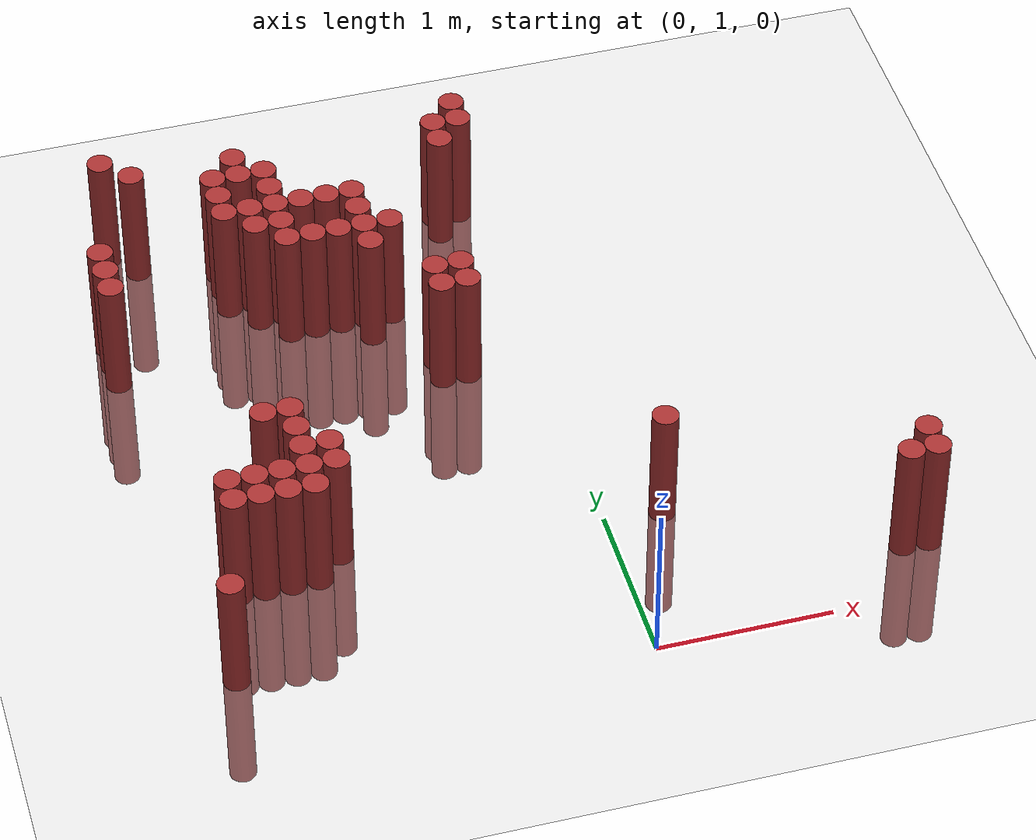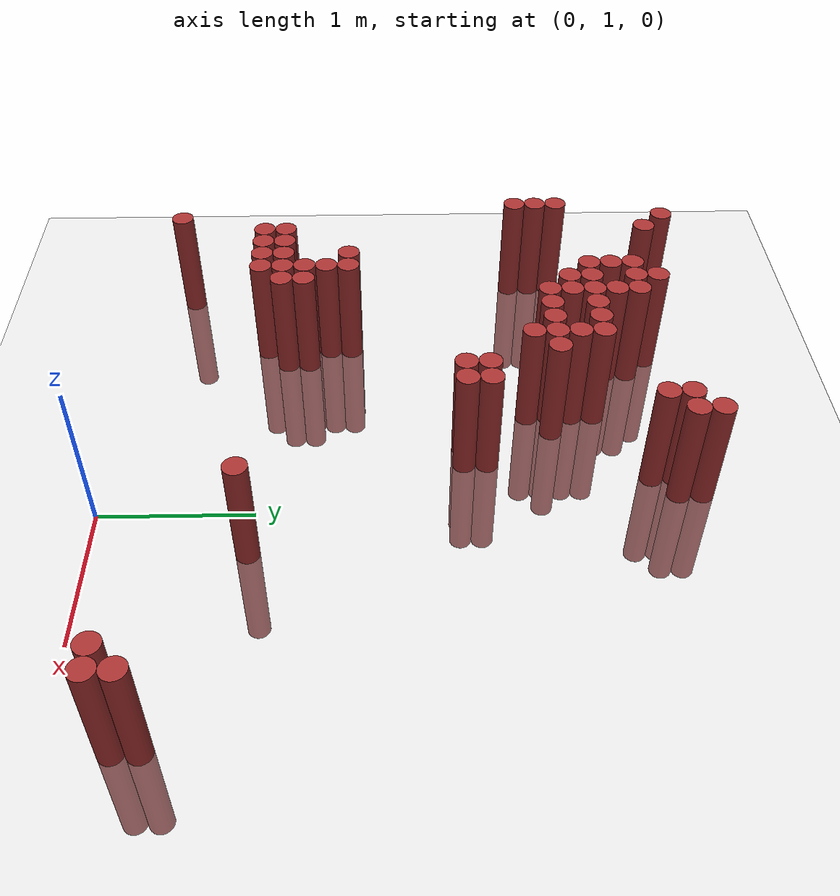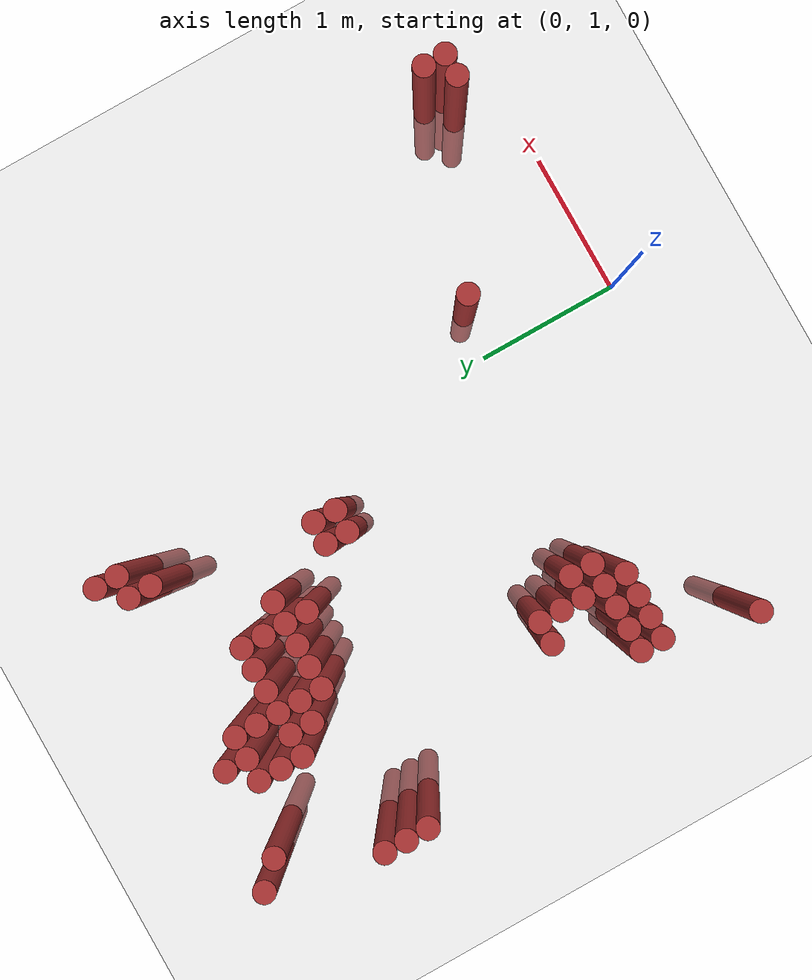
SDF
<sdf version="1.6">
 <world name="default">
  <model name="ground_plane">
   <static>1</static>
   <link name="link">
    <collision name="collision">
     <geometry><plane><normal>0 0 1</normal><size>100 100</size></plane></geometry>
     <surface><friction><ode><mu>100</mu><mu2>50</mu2></ode></friction></surface>
    </collision>
    <visual name="visual">
     <cast_shadows>0</cast_shadows>
     <geometry><plane><normal>0 0 1</normal><size>100 100</size></plane></geometry>
     <material>
      <script><uri>file://media/materials/scripts/gazebo.material</uri><name>Gazebo/Grey</name></script>
     </material>
    </visual>
   </link>
  </model>
  <model name="unit_cylinder_331">
   <static>1</static>
   <pose>-2.375000 3.775000 0.000000 0.000000 0.000000 0.000000</pose>
   <link name="link">
    <inertial>
     <mass>1</mass>
     <inertia><ixx>0.145833</ixx><ixy>0</ixy><ixz>0</ixz><iyy>0.145833</iyy><iyz>0</iyz><izz>0.125</izz></inertia>
    </inertial>
    <collision name="collision">
     <geometry><cylinder><radius>0.075000</radius><length>1.5</length></cylinder></geometry>
    </collision>
    <visual name="visual">
     <geometry><cylinder><radius>0.075000</radius><length>1.5</length></cylinder></geometry>
     <material>
      <ambient>0.648000 0.192000 0.192000 1</ambient>
      <diffuse>0.648000 0.192000 0.192000 1</diffuse>
     </material>
     <material>
      <script><name>Gazebo/Grey</name><uri>file://media/materials/scripts/gazebo.material</uri></script>
     </material>
    </visual>
   </link>
  </model>
  <model name="unit_cylinder_332">
   <static>1</static>
   <pose>-2.375000 3.925000 0.000000 0.000000 0.000000 0.000000</pose>
   <link name="link">
    <inertial>
     <mass>1</mass>
     <inertia><ixx>0.145833</ixx><ixy>0</ixy><ixz>0</ixz><iyy>0.145833</iyy><iyz>0</iyz><izz>0.125</izz></inertia>
    </inertial>
    <collision name="collision">
     <geometry><cylinder><radius>0.075000</radius><length>1.5</length></cylinder></geometry>
    </collision>
    <visual name="visual">
     <geometry><cylinder><radius>0.075000</radius><length>1.5</length></cylinder></geometry>
     <material>
      <ambient>0.648000 0.192000 0.192000 1</ambient>
      <diffuse>0.648000 0.192000 0.192000 1</diffuse>
     </material>
     <material>
      <script><name>Gazebo/Grey</name><uri>file://media/materials/scripts/gazebo.material</uri></script>
     </material>
    </visual>
   </link>
  </model>
  <model name="unit_cylinder_333">
   <static>1</static>
   <pose>-2.375000 4.075000 0.000000 0.000000 0.000000 0.000000</pose>
   <link name="link">
    <inertial>
     <mass>1</mass>
     <inertia><ixx>0.145833</ixx><ixy>0</ixy><ixz>0</ixz><iyy>0.145833</iyy><iyz>0</iyz><izz>0.125</izz></inertia>
    </inertial>
    <collision name="collision">
     <geometry><cylinder><radius>0.075000</radius><length>1.5</length></cylinder></geometry>
    </collision>
    <visual name="visual">
     <geometry><cylinder><radius>0.075000</radius><length>1.5</length></cylinder></geometry>
     <material>
      <ambient>0.648000 0.192000 0.192000 1</ambient>
      <diffuse>0.648000 0.192000 0.192000 1</diffuse>
     </material>
     <material>
      <script><name>Gazebo/Grey</name><uri>file://media/materials/scripts/gazebo.material</uri></script>
     </material>
    </visual>
   </link>
  </model>
  <model name="unit_cylinder_335">
   <static>1</static>
   <pose>-2.225000 1.375000 0.000000 0.000000 0.000000 0.000000</pose>
   <link name="link">
    <inertial>
     <mass>1</mass>
     <inertia><ixx>0.145833</ixx><ixy>0</ixy><ixz>0</ixz><iyy>0.145833</iyy><iyz>0</iyz><izz>0.125</izz></inertia>
    </inertial>
    <collision name="collision">
     <geometry><cylinder><radius>0.075000</radius><length>1.5</length></cylinder></geometry>
    </collision>
    <visual name="visual">
     <geometry><cylinder><radius>0.075000</radius><length>1.5</length></cylinder></geometry>
     <material>
      <ambient>0.648000 0.192000 0.192000 1</ambient>
      <diffuse>0.648000 0.192000 0.192000 1</diffuse>
     </material>
     <material>
      <script><name>Gazebo/Grey</name><uri>file://media/materials/scripts/gazebo.material</uri></script>
     </material>
    </visual>
   </link>
  </model>
  <model name="unit_cylinder_336">
   <static>1</static>
   <pose>-2.225000 4.825000 0.000000 0.000000 0.000000 0.000000</pose>
   <link name="link">
    <inertial>
     <mass>1</mass>
     <inertia><ixx>0.145833</ixx><ixy>0</ixy><ixz>0</ixz><iyy>0.145833</iyy><iyz>0</iyz><izz>0.125</izz></inertia>
    </inertial>
    <collision name="collision">
     <geometry><cylinder><radius>0.075000</radius><length>1.5</length></cylinder></geometry>
    </collision>
    <visual name="visual">
     <geometry><cylinder><radius>0.075000</radius><length>1.5</length></cylinder></geometry>
     <material>
      <ambient>0.648000 0.192000 0.192000 1</ambient>
      <diffuse>0.648000 0.192000 0.192000 1</diffuse>
     </material>
     <material>
      <script><name>Gazebo/Grey</name><uri>file://media/materials/scripts/gazebo.material</uri></script>
     </material>
    </visual>
   </link>
  </model>
  <model name="unit_cylinder_337">
   <static>1</static>
   <pose>-2.075000 1.975000 0.000000 0.000000 0.000000 0.000000</pose>
   <link name="link">
    <inertial>
     <mass>1</mass>
     <inertia><ixx>0.145833</ixx><ixy>0</ixy><ixz>0</ixz><iyy>0.145833</iyy><iyz>0</iyz><izz>0.125</izz></inertia>
    </inertial>
    <collision name="collision">
     <geometry><cylinder><radius>0.075000</radius><length>1.5</length></cylinder></geometry>
    </collision>
    <visual name="visual">
     <geometry><cylinder><radius>0.075000</radius><length>1.5</length></cylinder></geometry>
     <material>
      <ambient>0.648000 0.192000 0.192000 1</ambient>
      <diffuse>0.648000 0.192000 0.192000 1</diffuse>
     </material>
     <material>
      <script><name>Gazebo/Grey</name><uri>file://media/materials/scripts/gazebo.material</uri></script>
     </material>
    </visual>
   </link>
  </model>
  <model name="unit_cylinder_338">
   <static>1</static>
   <pose>-2.075000 2.125000 0.000000 0.000000 0.000000 0.000000</pose>
   <link name="link">
    <inertial>
     <mass>1</mass>
     <inertia><ixx>0.145833</ixx><ixy>0</ixy><ixz>0</ixz><iyy>0.145833</iyy><iyz>0</iyz><izz>0.125</izz></inertia>
    </inertial>
    <collision name="collision">
     <geometry><cylinder><radius>0.075000</radius><length>1.5</length></cylinder></geometry>
    </collision>
    <visual name="visual">
     <geometry><cylinder><radius>0.075000</radius><length>1.5</length></cylinder></geometry>
     <material>
      <ambient>0.648000 0.192000 0.192000 1</ambient>
      <diffuse>0.648000 0.192000 0.192000 1</diffuse>
     </material>
     <material>
      <script><name>Gazebo/Grey</name><uri>file://media/materials/scripts/gazebo.material</uri></script>
     </material>
    </visual>
   </link>
  </model>
  <model name="unit_cylinder_339">
   <static>1</static>
   <pose>-2.075000 4.675000 0.000000 0.000000 0.000000 0.000000</pose>
   <link name="link">
    <inertial>
     <mass>1</mass>
     <inertia><ixx>0.145833</ixx><ixy>0</ixy><ixz>0</ixz><iyy>0.145833</iyy><iyz>0</iyz><izz>0.125</izz></inertia>
    </inertial>
    <collision name="collision">
     <geometry><cylinder><radius>0.075000</radius><length>1.5</length></cylinder></geometry>
    </collision>
    <visual name="visual">
     <geometry><cylinder><radius>0.075000</radius><length>1.5</length></cylinder></geometry>
     <material>
      <ambient>0.648000 0.192000 0.192000 1</ambient>
      <diffuse>0.648000 0.192000 0.192000 1</diffuse>
     </material>
     <material>
      <script><name>Gazebo/Grey</name><uri>file://media/materials/scripts/gazebo.material</uri></script>
     </material>
    </visual>
   </link>
  </model>
  <model name="unit_cylinder_340">
   <static>1</static>
   <pose>-1.925000 1.975000 0.000000 0.000000 0.000000 0.000000</pose>
   <link name="link">
    <inertial>
     <mass>1</mass>
     <inertia><ixx>0.145833</ixx><ixy>0</ixy><ixz>0</ixz><iyy>0.145833</iyy><iyz>0</iyz><izz>0.125</izz></inertia>
    </inertial>
    <collision name="collision">
     <geometry><cylinder><radius>0.075000</radius><length>1.5</length></cylinder></geometry>
    </collision>
    <visual name="visual">
     <geometry><cylinder><radius>0.075000</radius><length>1.5</length></cylinder></geometry>
     <material>
      <ambient>0.648000 0.192000 0.192000 1</ambient>
      <diffuse>0.648000 0.192000 0.192000 1</diffuse>
     </material>
     <material>
      <script><name>Gazebo/Grey</name><uri>file://media/materials/scripts/gazebo.material</uri></script>
     </material>
    </visual>
   </link>
  </model>
  <model name="unit_cylinder_341">
   <static>1</static>
   <pose>-1.925000 2.125000 0.000000 0.000000 0.000000 0.000000</pose>
   <link name="link">
    <inertial>
     <mass>1</mass>
     <inertia><ixx>0.145833</ixx><ixy>0</ixy><ixz>0</ixz><iyy>0.145833</iyy><iyz>0</iyz><izz>0.125</izz></inertia>
    </inertial>
    <collision name="collision">
     <geometry><cylinder><radius>0.075000</radius><length>1.5</length></cylinder></geometry>
    </collision>
    <visual name="visual">
     <geometry><cylinder><radius>0.075000</radius><length>1.5</length></cylinder></geometry>
     <material>
      <ambient>0.648000 0.192000 0.192000 1</ambient>
      <diffuse>0.648000 0.192000 0.192000 1</diffuse>
     </material>
     <material>
      <script><name>Gazebo/Grey</name><uri>file://media/materials/scripts/gazebo.material</uri></script>
     </material>
    </visual>
   </link>
  </model>
  <model name="unit_cylinder_342">
   <static>1</static>
   <pose>-1.775000 1.975000 0.000000 0.000000 0.000000 0.000000</pose>
   <link name="link">
    <inertial>
     <mass>1</mass>
     <inertia><ixx>0.145833</ixx><ixy>0</ixy><ixz>0</ixz><iyy>0.145833</iyy><iyz>0</iyz><izz>0.125</izz></inertia>
    </inertial>
    <collision name="collision">
     <geometry><cylinder><radius>0.075000</radius><length>1.5</length></cylinder></geometry>
    </collision>
    <visual name="visual">
     <geometry><cylinder><radius>0.075000</radius><length>1.5</length></cylinder></geometry>
     <material>
      <ambient>0.648000 0.192000 0.192000 1</ambient>
      <diffuse>0.648000 0.192000 0.192000 1</diffuse>
     </material>
     <material>
      <script><name>Gazebo/Grey</name><uri>file://media/materials/scripts/gazebo.material</uri></script>
     </material>
    </visual>
   </link>
  </model>
  <model name="unit_cylinder_343">
   <static>1</static>
   <pose>-1.775000 2.125000 0.000000 0.000000 0.000000 0.000000</pose>
   <link name="link">
    <inertial>
     <mass>1</mass>
     <inertia><ixx>0.145833</ixx><ixy>0</ixy><ixz>0</ixz><iyy>0.145833</iyy><iyz>0</iyz><izz>0.125</izz></inertia>
    </inertial>
    <collision name="collision">
     <geometry><cylinder><radius>0.075000</radius><length>1.5</length></cylinder></geometry>
    </collision>
    <visual name="visual">
     <geometry><cylinder><radius>0.075000</radius><length>1.5</length></cylinder></geometry>
     <material>
      <ambient>0.648000 0.192000 0.192000 1</ambient>
      <diffuse>0.648000 0.192000 0.192000 1</diffuse>
     </material>
     <material>
      <script><name>Gazebo/Grey</name><uri>file://media/materials/scripts/gazebo.material</uri></script>
     </material>
    </visual>
   </link>
  </model>
  <model name="unit_cylinder_344">
   <static>1</static>
   <pose>-1.775000 2.575000 0.000000 0.000000 0.000000 0.000000</pose>
   <link name="link">
    <inertial>
     <mass>1</mass>
     <inertia><ixx>0.145833</ixx><ixy>0</ixy><ixz>0</ixz><iyy>0.145833</iyy><iyz>0</iyz><izz>0.125</izz></inertia>
    </inertial>
    <collision name="collision">
     <geometry><cylinder><radius>0.075000</radius><length>1.5</length></cylinder></geometry>
    </collision>
    <visual name="visual">
     <geometry><cylinder><radius>0.075000</radius><length>1.5</length></cylinder></geometry>
     <material>
      <ambient>0.648000 0.192000 0.192000 1</ambient>
      <diffuse>0.648000 0.192000 0.192000 1</diffuse>
     </material>
     <material>
      <script><name>Gazebo/Grey</name><uri>file://media/materials/scripts/gazebo.material</uri></script>
     </material>
    </visual>
   </link>
  </model>
  <model name="unit_cylinder_345">
   <static>1</static>
   <pose>-1.625000 1.975000 0.000000 0.000000 0.000000 0.000000</pose>
   <link name="link">
    <inertial>
     <mass>1</mass>
     <inertia><ixx>0.145833</ixx><ixy>0</ixy><ixz>0</ixz><iyy>0.145833</iyy><iyz>0</iyz><izz>0.125</izz></inertia>
    </inertial>
    <collision name="collision">
     <geometry><cylinder><radius>0.075000</radius><length>1.5</length></cylinder></geometry>
    </collision>
    <visual name="visual">
     <geometry><cylinder><radius>0.075000</radius><length>1.5</length></cylinder></geometry>
     <material>
      <ambient>0.648000 0.192000 0.192000 1</ambient>
      <diffuse>0.648000 0.192000 0.192000 1</diffuse>
     </material>
     <material>
      <script><name>Gazebo/Grey</name><uri>file://media/materials/scripts/gazebo.material</uri></script>
     </material>
    </visual>
   </link>
  </model>
  <model name="unit_cylinder_346">
   <static>1</static>
   <pose>-1.625000 2.125000 0.000000 0.000000 0.000000 0.000000</pose>
   <link name="link">
    <inertial>
     <mass>1</mass>
     <inertia><ixx>0.145833</ixx><ixy>0</ixy><ixz>0</ixz><iyy>0.145833</iyy><iyz>0</iyz><izz>0.125</izz></inertia>
    </inertial>
    <collision name="collision">
     <geometry><cylinder><radius>0.075000</radius><length>1.5</length></cylinder></geometry>
    </collision>
    <visual name="visual">
     <geometry><cylinder><radius>0.075000</radius><length>1.5</length></cylinder></geometry>
     <material>
      <ambient>0.648000 0.192000 0.192000 1</ambient>
      <diffuse>0.648000 0.192000 0.192000 1</diffuse>
     </material>
     <material>
      <script><name>Gazebo/Grey</name><uri>file://media/materials/scripts/gazebo.material</uri></script>
     </material>
    </visual>
   </link>
  </model>
  <model name="unit_cylinder_347">
   <static>1</static>
   <pose>-1.625000 2.275000 0.000000 0.000000 0.000000 0.000000</pose>
   <link name="link">
    <inertial>
     <mass>1</mass>
     <inertia><ixx>0.145833</ixx><ixy>0</ixy><ixz>0</ixz><iyy>0.145833</iyy><iyz>0</iyz><izz>0.125</izz></inertia>
    </inertial>
    <collision name="collision">
     <geometry><cylinder><radius>0.075000</radius><length>1.5</length></cylinder></geometry>
    </collision>
    <visual name="visual">
     <geometry><cylinder><radius>0.075000</radius><length>1.5</length></cylinder></geometry>
     <material>
      <ambient>0.648000 0.192000 0.192000 1</ambient>
      <diffuse>0.648000 0.192000 0.192000 1</diffuse>
     </material>
     <material>
      <script><name>Gazebo/Grey</name><uri>file://media/materials/scripts/gazebo.material</uri></script>
     </material>
    </visual>
   </link>
  </model>
  <model name="unit_cylinder_348">
   <static>1</static>
   <pose>-1.625000 2.425000 0.000000 0.000000 0.000000 0.000000</pose>
   <link name="link">
    <inertial>
     <mass>1</mass>
     <inertia><ixx>0.145833</ixx><ixy>0</ixy><ixz>0</ixz><iyy>0.145833</iyy><iyz>0</iyz><izz>0.125</izz></inertia>
    </inertial>
    <collision name="collision">
     <geometry><cylinder><radius>0.075000</radius><length>1.5</length></cylinder></geometry>
    </collision>
    <visual name="visual">
     <geometry><cylinder><radius>0.075000</radius><length>1.5</length></cylinder></geometry>
     <material>
      <ambient>0.648000 0.192000 0.192000 1</ambient>
      <diffuse>0.648000 0.192000 0.192000 1</diffuse>
     </material>
     <material>
      <script><name>Gazebo/Grey</name><uri>file://media/materials/scripts/gazebo.material</uri></script>
     </material>
    </visual>
   </link>
  </model>
  <model name="unit_cylinder_349">
   <static>1</static>
   <pose>-1.625000 2.575000 0.000000 0.000000 0.000000 0.000000</pose>
   <link name="link">
    <inertial>
     <mass>1</mass>
     <inertia><ixx>0.145833</ixx><ixy>0</ixy><ixz>0</ixz><iyy>0.145833</iyy><iyz>0</iyz><izz>0.125</izz></inertia>
    </inertial>
    <collision name="collision">
     <geometry><cylinder><radius>0.075000</radius><length>1.5</length></cylinder></geometry>
    </collision>
    <visual name="visual">
     <geometry><cylinder><radius>0.075000</radius><length>1.5</length></cylinder></geometry>
     <material>
      <ambient>0.648000 0.192000 0.192000 1</ambient>
      <diffuse>0.648000 0.192000 0.192000 1</diffuse>
     </material>
     <material>
      <script><name>Gazebo/Grey</name><uri>file://media/materials/scripts/gazebo.material</uri></script>
     </material>
    </visual>
   </link>
  </model>
  <model name="unit_cylinder_350">
   <static>1</static>
   <pose>-1.625000 4.225000 0.000000 0.000000 0.000000 0.000000</pose>
   <link name="link">
    <inertial>
     <mass>1</mass>
     <inertia><ixx>0.145833</ixx><ixy>0</ixy><ixz>0</ixz><iyy>0.145833</iyy><iyz>0</iyz><izz>0.125</izz></inertia>
    </inertial>
    <collision name="collision">
     <geometry><cylinder><radius>0.075000</radius><length>1.5</length></cylinder></geometry>
    </collision>
    <visual name="visual">
     <geometry><cylinder><radius>0.075000</radius><length>1.5</length></cylinder></geometry>
     <material>
      <ambient>0.648000 0.192000 0.192000 1</ambient>
      <diffuse>0.648000 0.192000 0.192000 1</diffuse>
     </material>
     <material>
      <script><name>Gazebo/Grey</name><uri>file://media/materials/scripts/gazebo.material</uri></script>
     </material>
    </visual>
   </link>
  </model>
  <model name="unit_cylinder_351">
   <static>1</static>
   <pose>-1.625000 4.375000 0.000000 0.000000 0.000000 0.000000</pose>
   <link name="link">
    <inertial>
     <mass>1</mass>
     <inertia><ixx>0.145833</ixx><ixy>0</ixy><ixz>0</ixz><iyy>0.145833</iyy><iyz>0</iyz><izz>0.125</izz></inertia>
    </inertial>
    <collision name="collision">
     <geometry><cylinder><radius>0.075000</radius><length>1.5</length></cylinder></geometry>
    </collision>
    <visual name="visual">
     <geometry><cylinder><radius>0.075000</radius><length>1.5</length></cylinder></geometry>
     <material>
      <ambient>0.648000 0.192000 0.192000 1</ambient>
      <diffuse>0.648000 0.192000 0.192000 1</diffuse>
     </material>
     <material>
      <script><name>Gazebo/Grey</name><uri>file://media/materials/scripts/gazebo.material</uri></script>
     </material>
    </visual>
   </link>
  </model>
  <model name="unit_cylinder_352">
   <static>1</static>
   <pose>-1.625000 4.525000 0.000000 0.000000 0.000000 0.000000</pose>
   <link name="link">
    <inertial>
     <mass>1</mass>
     <inertia><ixx>0.145833</ixx><ixy>0</ixy><ixz>0</ixz><iyy>0.145833</iyy><iyz>0</iyz><izz>0.125</izz></inertia>
    </inertial>
    <collision name="collision">
     <geometry><cylinder><radius>0.075000</radius><length>1.5</length></cylinder></geometry>
    </collision>
    <visual name="visual">
     <geometry><cylinder><radius>0.075000</radius><length>1.5</length></cylinder></geometry>
     <material>
      <ambient>0.648000 0.192000 0.192000 1</ambient>
      <diffuse>0.648000 0.192000 0.192000 1</diffuse>
     </material>
     <material>
      <script><name>Gazebo/Grey</name><uri>file://media/materials/scripts/gazebo.material</uri></script>
     </material>
    </visual>
   </link>
  </model>
  <model name="unit_cylinder_355">
   <static>1</static>
   <pose>-1.475000 2.125000 0.000000 0.000000 0.000000 0.000000</pose>
   <link name="link">
    <inertial>
     <mass>1</mass>
     <inertia><ixx>0.145833</ixx><ixy>0</ixy><ixz>0</ixz><iyy>0.145833</iyy><iyz>0</iyz><izz>0.125</izz></inertia>
    </inertial>
    <collision name="collision">
     <geometry><cylinder><radius>0.075000</radius><length>1.5</length></cylinder></geometry>
    </collision>
    <visual name="visual">
     <geometry><cylinder><radius>0.075000</radius><length>1.5</length></cylinder></geometry>
     <material>
      <ambient>0.648000 0.192000 0.192000 1</ambient>
      <diffuse>0.648000 0.192000 0.192000 1</diffuse>
     </material>
     <material>
      <script><name>Gazebo/Grey</name><uri>file://media/materials/scripts/gazebo.material</uri></script>
     </material>
    </visual>
   </link>
  </model>
  <model name="unit_cylinder_356">
   <static>1</static>
   <pose>-1.475000 2.275000 0.000000 0.000000 0.000000 0.000000</pose>
   <link name="link">
    <inertial>
     <mass>1</mass>
     <inertia><ixx>0.145833</ixx><ixy>0</ixy><ixz>0</ixz><iyy>0.145833</iyy><iyz>0</iyz><izz>0.125</izz></inertia>
    </inertial>
    <collision name="collision">
     <geometry><cylinder><radius>0.075000</radius><length>1.5</length></cylinder></geometry>
    </collision>
    <visual name="visual">
     <geometry><cylinder><radius>0.075000</radius><length>1.5</length></cylinder></geometry>
     <material>
      <ambient>0.648000 0.192000 0.192000 1</ambient>
      <diffuse>0.648000 0.192000 0.192000 1</diffuse>
     </material>
     <material>
      <script><name>Gazebo/Grey</name><uri>file://media/materials/scripts/gazebo.material</uri></script>
     </material>
    </visual>
   </link>
  </model>
  <model name="unit_cylinder_357">
   <static>1</static>
   <pose>-1.475000 4.075000 0.000000 0.000000 0.000000 0.000000</pose>
   <link name="link">
    <inertial>
     <mass>1</mass>
     <inertia><ixx>0.145833</ixx><ixy>0</ixy><ixz>0</ixz><iyy>0.145833</iyy><iyz>0</iyz><izz>0.125</izz></inertia>
    </inertial>
    <collision name="collision">
     <geometry><cylinder><radius>0.075000</radius><length>1.5</length></cylinder></geometry>
    </collision>
    <visual name="visual">
     <geometry><cylinder><radius>0.075000</radius><length>1.5</length></cylinder></geometry>
     <material>
      <ambient>0.648000 0.192000 0.192000 1</ambient>
      <diffuse>0.648000 0.192000 0.192000 1</diffuse>
     </material>
     <material>
      <script><name>Gazebo/Grey</name><uri>file://media/materials/scripts/gazebo.material</uri></script>
     </material>
    </visual>
   </link>
  </model>
  <model name="unit_cylinder_358">
   <static>1</static>
   <pose>-1.475000 4.225000 0.000000 0.000000 0.000000 0.000000</pose>
   <link name="link">
    <inertial>
     <mass>1</mass>
     <inertia><ixx>0.145833</ixx><ixy>0</ixy><ixz>0</ixz><iyy>0.145833</iyy><iyz>0</iyz><izz>0.125</izz></inertia>
    </inertial>
    <collision name="collision">
     <geometry><cylinder><radius>0.075000</radius><length>1.5</length></cylinder></geometry>
    </collision>
    <visual name="visual">
     <geometry><cylinder><radius>0.075000</radius><length>1.5</length></cylinder></geometry>
     <material>
      <ambient>0.648000 0.192000 0.192000 1</ambient>
      <diffuse>0.648000 0.192000 0.192000 1</diffuse>
     </material>
     <material>
      <script><name>Gazebo/Grey</name><uri>file://media/materials/scripts/gazebo.material</uri></script>
     </material>
    </visual>
   </link>
  </model>
  <model name="unit_cylinder_359">
   <static>1</static>
   <pose>-1.475000 4.525000 0.000000 0.000000 0.000000 0.000000</pose>
   <link name="link">
    <inertial>
     <mass>1</mass>
     <inertia><ixx>0.145833</ixx><ixy>0</ixy><ixz>0</ixz><iyy>0.145833</iyy><iyz>0</iyz><izz>0.125</izz></inertia>
    </inertial>
    <collision name="collision">
     <geometry><cylinder><radius>0.075000</radius><length>1.5</length></cylinder></geometry>
    </collision>
    <visual name="visual">
     <geometry><cylinder><radius>0.075000</radius><length>1.5</length></cylinder></geometry>
     <material>
      <ambient>0.648000 0.192000 0.192000 1</ambient>
      <diffuse>0.648000 0.192000 0.192000 1</diffuse>
     </material>
     <material>
      <script><name>Gazebo/Grey</name><uri>file://media/materials/scripts/gazebo.material</uri></script>
     </material>
    </visual>
   </link>
  </model>
  <model name="unit_cylinder_360">
   <static>1</static>
   <pose>-1.475000 4.675000 0.000000 0.000000 0.000000 0.000000</pose>
   <link name="link">
    <inertial>
     <mass>1</mass>
     <inertia><ixx>0.145833</ixx><ixy>0</ixy><ixz>0</ixz><iyy>0.145833</iyy><iyz>0</iyz><izz>0.125</izz></inertia>
    </inertial>
    <collision name="collision">
     <geometry><cylinder><radius>0.075000</radius><length>1.5</length></cylinder></geometry>
    </collision>
    <visual name="visual">
     <geometry><cylinder><radius>0.075000</radius><length>1.5</length></cylinder></geometry>
     <material>
      <ambient>0.648000 0.192000 0.192000 1</ambient>
      <diffuse>0.648000 0.192000 0.192000 1</diffuse>
     </material>
     <material>
      <script><name>Gazebo/Grey</name><uri>file://media/materials/scripts/gazebo.material</uri></script>
     </material>
    </visual>
   </link>
  </model>
  <model name="unit_cylinder_364">
   <static>1</static>
   <pose>-1.325000 3.925000 0.000000 0.000000 0.000000 0.000000</pose>
   <link name="link">
    <inertial>
     <mass>1</mass>
     <inertia><ixx>0.145833</ixx><ixy>0</ixy><ixz>0</ixz><iyy>0.145833</iyy><iyz>0</iyz><izz>0.125</izz></inertia>
    </inertial>
    <collision name="collision">
     <geometry><cylinder><radius>0.075000</radius><length>1.5</length></cylinder></geometry>
    </collision>
    <visual name="visual">
     <geometry><cylinder><radius>0.075000</radius><length>1.5</length></cylinder></geometry>
     <material>
      <ambient>0.648000 0.192000 0.192000 1</ambient>
      <diffuse>0.648000 0.192000 0.192000 1</diffuse>
     </material>
     <material>
      <script><name>Gazebo/Grey</name><uri>file://media/materials/scripts/gazebo.material</uri></script>
     </material>
    </visual>
   </link>
  </model>
  <model name="unit_cylinder_365">
   <static>1</static>
   <pose>-1.325000 4.075000 0.000000 0.000000 0.000000 0.000000</pose>
   <link name="link">
    <inertial>
     <mass>1</mass>
     <inertia><ixx>0.145833</ixx><ixy>0</ixy><ixz>0</ixz><iyy>0.145833</iyy><iyz>0</iyz><izz>0.125</izz></inertia>
    </inertial>
    <collision name="collision">
     <geometry><cylinder><radius>0.075000</radius><length>1.5</length></cylinder></geometry>
    </collision>
    <visual name="visual">
     <geometry><cylinder><radius>0.075000</radius><length>1.5</length></cylinder></geometry>
     <material>
      <ambient>0.648000 0.192000 0.192000 1</ambient>
      <diffuse>0.648000 0.192000 0.192000 1</diffuse>
     </material>
     <material>
      <script><name>Gazebo/Grey</name><uri>file://media/materials/scripts/gazebo.material</uri></script>
     </material>
    </visual>
   </link>
  </model>
  <model name="unit_cylinder_366">
   <static>1</static>
   <pose>-1.325000 4.225000 0.000000 0.000000 0.000000 0.000000</pose>
   <link name="link">
    <inertial>
     <mass>1</mass>
     <inertia><ixx>0.145833</ixx><ixy>0</ixy><ixz>0</ixz><iyy>0.145833</iyy><iyz>0</iyz><izz>0.125</izz></inertia>
    </inertial>
    <collision name="collision">
     <geometry><cylinder><radius>0.075000</radius><length>1.5</length></cylinder></geometry>
    </collision>
    <visual name="visual">
     <geometry><cylinder><radius>0.075000</radius><length>1.5</length></cylinder></geometry>
     <material>
      <ambient>0.648000 0.192000 0.192000 1</ambient>
      <diffuse>0.648000 0.192000 0.192000 1</diffuse>
     </material>
     <material>
      <script><name>Gazebo/Grey</name><uri>file://media/materials/scripts/gazebo.material</uri></script>
     </material>
    </visual>
   </link>
  </model>
  <model name="unit_cylinder_367">
   <static>1</static>
   <pose>-1.325000 4.375000 0.000000 0.000000 0.000000 0.000000</pose>
   <link name="link">
    <inertial>
     <mass>1</mass>
     <inertia><ixx>0.145833</ixx><ixy>0</ixy><ixz>0</ixz><iyy>0.145833</iyy><iyz>0</iyz><izz>0.125</izz></inertia>
    </inertial>
    <collision name="collision">
     <geometry><cylinder><radius>0.075000</radius><length>1.5</length></cylinder></geometry>
    </collision>
    <visual name="visual">
     <geometry><cylinder><radius>0.075000</radius><length>1.5</length></cylinder></geometry>
     <material>
      <ambient>0.648000 0.192000 0.192000 1</ambient>
      <diffuse>0.648000 0.192000 0.192000 1</diffuse>
     </material>
     <material>
      <script><name>Gazebo/Grey</name><uri>file://media/materials/scripts/gazebo.material</uri></script>
     </material>
    </visual>
   </link>
  </model>
  <model name="unit_cylinder_368">
   <static>1</static>
   <pose>-1.325000 4.525000 0.000000 0.000000 0.000000 0.000000</pose>
   <link name="link">
    <inertial>
     <mass>1</mass>
     <inertia><ixx>0.145833</ixx><ixy>0</ixy><ixz>0</ixz><iyy>0.145833</iyy><iyz>0</iyz><izz>0.125</izz></inertia>
    </inertial>
    <collision name="collision">
     <geometry><cylinder><radius>0.075000</radius><length>1.5</length></cylinder></geometry>
    </collision>
    <visual name="visual">
     <geometry><cylinder><radius>0.075000</radius><length>1.5</length></cylinder></geometry>
     <material>
      <ambient>0.648000 0.192000 0.192000 1</ambient>
      <diffuse>0.648000 0.192000 0.192000 1</diffuse>
     </material>
     <material>
      <script><name>Gazebo/Grey</name><uri>file://media/materials/scripts/gazebo.material</uri></script>
     </material>
    </visual>
   </link>
  </model>
  <model name="unit_cylinder_370">
   <static>1</static>
   <pose>-1.175000 3.925000 0.000000 0.000000 0.000000 0.000000</pose>
   <link name="link">
    <inertial>
     <mass>1</mass>
     <inertia><ixx>0.145833</ixx><ixy>0</ixy><ixz>0</ixz><iyy>0.145833</iyy><iyz>0</iyz><izz>0.125</izz></inertia>
    </inertial>
    <collision name="collision">
     <geometry><cylinder><radius>0.075000</radius><length>1.5</length></cylinder></geometry>
    </collision>
    <visual name="visual">
     <geometry><cylinder><radius>0.075000</radius><length>1.5</length></cylinder></geometry>
     <material>
      <ambient>0.648000 0.192000 0.192000 1</ambient>
      <diffuse>0.648000 0.192000 0.192000 1</diffuse>
     </material>
     <material>
      <script><name>Gazebo/Grey</name><uri>file://media/materials/scripts/gazebo.material</uri></script>
     </material>
    </visual>
   </link>
  </model>
  <model name="unit_cylinder_371">
   <static>1</static>
   <pose>-1.175000 4.225000 0.000000 0.000000 0.000000 0.000000</pose>
   <link name="link">
    <inertial>
     <mass>1</mass>
     <inertia><ixx>0.145833</ixx><ixy>0</ixy><ixz>0</ixz><iyy>0.145833</iyy><iyz>0</iyz><izz>0.125</izz></inertia>
    </inertial>
    <collision name="collision">
     <geometry><cylinder><radius>0.075000</radius><length>1.5</length></cylinder></geometry>
    </collision>
    <visual name="visual">
     <geometry><cylinder><radius>0.075000</radius><length>1.5</length></cylinder></geometry>
     <material>
      <ambient>0.648000 0.192000 0.192000 1</ambient>
      <diffuse>0.648000 0.192000 0.192000 1</diffuse>
     </material>
     <material>
      <script><name>Gazebo/Grey</name><uri>file://media/materials/scripts/gazebo.material</uri></script>
     </material>
    </visual>
   </link>
  </model>
  <model name="unit_cylinder_372">
   <static>1</static>
   <pose>-1.025000 3.925000 0.000000 0.000000 0.000000 0.000000</pose>
   <link name="link">
    <inertial>
     <mass>1</mass>
     <inertia><ixx>0.145833</ixx><ixy>0</ixy><ixz>0</ixz><iyy>0.145833</iyy><iyz>0</iyz><izz>0.125</izz></inertia>
    </inertial>
    <collision name="collision">
     <geometry><cylinder><radius>0.075000</radius><length>1.5</length></cylinder></geometry>
    </collision>
    <visual name="visual">
     <geometry><cylinder><radius>0.075000</radius><length>1.5</length></cylinder></geometry>
     <material>
      <ambient>0.648000 0.192000 0.192000 1</ambient>
      <diffuse>0.648000 0.192000 0.192000 1</diffuse>
     </material>
     <material>
      <script><name>Gazebo/Grey</name><uri>file://media/materials/scripts/gazebo.material</uri></script>
     </material>
    </visual>
   </link>
  </model>
  <model name="unit_cylinder_373">
   <static>1</static>
   <pose>-1.025000 4.225000 0.000000 0.000000 0.000000 0.000000</pose>
   <link name="link">
    <inertial>
     <mass>1</mass>
     <inertia><ixx>0.145833</ixx><ixy>0</ixy><ixz>0</ixz><iyy>0.145833</iyy><iyz>0</iyz><izz>0.125</izz></inertia>
    </inertial>
    <collision name="collision">
     <geometry><cylinder><radius>0.075000</radius><length>1.5</length></cylinder></geometry>
    </collision>
    <visual name="visual">
     <geometry><cylinder><radius>0.075000</radius><length>1.5</length></cylinder></geometry>
     <material>
      <ambient>0.648000 0.192000 0.192000 1</ambient>
      <diffuse>0.648000 0.192000 0.192000 1</diffuse>
     </material>
     <material>
      <script><name>Gazebo/Grey</name><uri>file://media/materials/scripts/gazebo.material</uri></script>
     </material>
    </visual>
   </link>
  </model>
  <model name="unit_cylinder_374">
   <static>1</static>
   <pose>-0.875000 3.775000 0.000000 0.000000 0.000000 0.000000</pose>
   <link name="link">
    <inertial>
     <mass>1</mass>
     <inertia><ixx>0.145833</ixx><ixy>0</ixy><ixz>0</ixz><iyy>0.145833</iyy><iyz>0</iyz><izz>0.125</izz></inertia>
    </inertial>
    <collision name="collision">
     <geometry><cylinder><radius>0.075000</radius><length>1.5</length></cylinder></geometry>
    </collision>
    <visual name="visual">
     <geometry><cylinder><radius>0.075000</radius><length>1.5</length></cylinder></geometry>
     <material>
      <ambient>0.648000 0.192000 0.192000 1</ambient>
      <diffuse>0.648000 0.192000 0.192000 1</diffuse>
     </material>
     <material>
      <script><name>Gazebo/Grey</name><uri>file://media/materials/scripts/gazebo.material</uri></script>
     </material>
    </visual>
   </link>
  </model>
  <model name="unit_cylinder_375">
   <static>1</static>
   <pose>-0.875000 3.925000 0.000000 0.000000 0.000000 0.000000</pose>
   <link name="link">
    <inertial>
     <mass>1</mass>
     <inertia><ixx>0.145833</ixx><ixy>0</ixy><ixz>0</ixz><iyy>0.145833</iyy><iyz>0</iyz><izz>0.125</izz></inertia>
    </inertial>
    <collision name="collision">
     <geometry><cylinder><radius>0.075000</radius><length>1.5</length></cylinder></geometry>
    </collision>
    <visual name="visual">
     <geometry><cylinder><radius>0.075000</radius><length>1.5</length></cylinder></geometry>
     <material>
      <ambient>0.648000 0.192000 0.192000 1</ambient>
      <diffuse>0.648000 0.192000 0.192000 1</diffuse>
     </material>
     <material>
      <script><name>Gazebo/Grey</name><uri>file://media/materials/scripts/gazebo.material</uri></script>
     </material>
    </visual>
   </link>
  </model>
  <model name="unit_cylinder_376">
   <static>1</static>
   <pose>-0.875000 4.075000 0.000000 0.000000 0.000000 0.000000</pose>
   <link name="link">
    <inertial>
     <mass>1</mass>
     <inertia><ixx>0.145833</ixx><ixy>0</ixy><ixz>0</ixz><iyy>0.145833</iyy><iyz>0</iyz><izz>0.125</izz></inertia>
    </inertial>
    <collision name="collision">
     <geometry><cylinder><radius>0.075000</radius><length>1.5</length></cylinder></geometry>
    </collision>
    <visual name="visual">
     <geometry><cylinder><radius>0.075000</radius><length>1.5</length></cylinder></geometry>
     <material>
      <ambient>0.648000 0.192000 0.192000 1</ambient>
      <diffuse>0.648000 0.192000 0.192000 1</diffuse>
     </material>
     <material>
      <script><name>Gazebo/Grey</name><uri>file://media/materials/scripts/gazebo.material</uri></script>
     </material>
    </visual>
   </link>
  </model>
  <model name="unit_cylinder_377">
   <static>1</static>
   <pose>-0.875000 4.225000 0.000000 0.000000 0.000000 0.000000</pose>
   <link name="link">
    <inertial>
     <mass>1</mass>
     <inertia><ixx>0.145833</ixx><ixy>0</ixy><ixz>0</ixz><iyy>0.145833</iyy><iyz>0</iyz><izz>0.125</izz></inertia>
    </inertial>
    <collision name="collision">
     <geometry><cylinder><radius>0.075000</radius><length>1.5</length></cylinder></geometry>
    </collision>
    <visual name="visual">
     <geometry><cylinder><radius>0.075000</radius><length>1.5</length></cylinder></geometry>
     <material>
      <ambient>0.648000 0.192000 0.192000 1</ambient>
      <diffuse>0.648000 0.192000 0.192000 1</diffuse>
     </material>
     <material>
      <script><name>Gazebo/Grey</name><uri>file://media/materials/scripts/gazebo.material</uri></script>
     </material>
    </visual>
   </link>
  </model>
  <model name="unit_cylinder_378">
   <static>1</static>
   <pose>-0.725000 3.925000 0.000000 0.000000 0.000000 0.000000</pose>
   <link name="link">
    <inertial>
     <mass>1</mass>
     <inertia><ixx>0.145833</ixx><ixy>0</ixy><ixz>0</ixz><iyy>0.145833</iyy><iyz>0</iyz><izz>0.125</izz></inertia>
    </inertial>
    <collision name="collision">
     <geometry><cylinder><radius>0.075000</radius><length>1.5</length></cylinder></geometry>
    </collision>
    <visual name="visual">
     <geometry><cylinder><radius>0.075000</radius><length>1.5</length></cylinder></geometry>
     <material>
      <ambient>0.648000 0.192000 0.192000 1</ambient>
      <diffuse>0.648000 0.192000 0.192000 1</diffuse>
     </material>
     <material>
      <script><name>Gazebo/Grey</name><uri>file://media/materials/scripts/gazebo.material</uri></script>
     </material>
    </visual>
   </link>
  </model>
  <model name="unit_cylinder_383">
   <static>1</static>
   <pose>-0.575000 3.325000 0.000000 0.000000 0.000000 0.000000</pose>
   <link name="link">
    <inertial>
     <mass>1</mass>
     <inertia><ixx>0.145833</ixx><ixy>0</ixy><ixz>0</ixz><iyy>0.145833</iyy><iyz>0</iyz><izz>0.125</izz></inertia>
    </inertial>
    <collision name="collision">
     <geometry><cylinder><radius>0.075000</radius><length>1.5</length></cylinder></geometry>
    </collision>
    <visual name="visual">
     <geometry><cylinder><radius>0.075000</radius><length>1.5</length></cylinder></geometry>
     <material>
      <ambient>0.648000 0.192000 0.192000 1</ambient>
      <diffuse>0.648000 0.192000 0.192000 1</diffuse>
     </material>
     <material>
      <script><name>Gazebo/Grey</name><uri>file://media/materials/scripts/gazebo.material</uri></script>
     </material>
    </visual>
   </link>
  </model>
  <model name="unit_cylinder_384">
   <static>1</static>
   <pose>-0.575000 3.475000 0.000000 0.000000 0.000000 0.000000</pose>
   <link name="link">
    <inertial>
     <mass>1</mass>
     <inertia><ixx>0.145833</ixx><ixy>0</ixy><ixz>0</ixz><iyy>0.145833</iyy><iyz>0</iyz><izz>0.125</izz></inertia>
    </inertial>
    <collision name="collision">
     <geometry><cylinder><radius>0.075000</radius><length>1.5</length></cylinder></geometry>
    </collision>
    <visual name="visual">
     <geometry><cylinder><radius>0.075000</radius><length>1.5</length></cylinder></geometry>
     <material>
      <ambient>0.648000 0.192000 0.192000 1</ambient>
      <diffuse>0.648000 0.192000 0.192000 1</diffuse>
     </material>
     <material>
      <script><name>Gazebo/Grey</name><uri>file://media/materials/scripts/gazebo.material</uri></script>
     </material>
    </visual>
   </link>
  </model>
  <model name="unit_cylinder_391">
   <static>1</static>
   <pose>-0.425000 3.325000 0.000000 0.000000 0.000000 0.000000</pose>
   <link name="link">
    <inertial>
     <mass>1</mass>
     <inertia><ixx>0.145833</ixx><ixy>0</ixy><ixz>0</ixz><iyy>0.145833</iyy><iyz>0</iyz><izz>0.125</izz></inertia>
    </inertial>
    <collision name="collision">
     <geometry><cylinder><radius>0.075000</radius><length>1.5</length></cylinder></geometry>
    </collision>
    <visual name="visual">
     <geometry><cylinder><radius>0.075000</radius><length>1.5</length></cylinder></geometry>
     <material>
      <ambient>0.648000 0.192000 0.192000 1</ambient>
      <diffuse>0.648000 0.192000 0.192000 1</diffuse>
     </material>
     <material>
      <script><name>Gazebo/Grey</name><uri>file://media/materials/scripts/gazebo.material</uri></script>
     </material>
    </visual>
   </link>
  </model>
  <model name="unit_cylinder_392">
   <static>1</static>
   <pose>-0.425000 3.475000 0.000000 0.000000 0.000000 0.000000</pose>
   <link name="link">
    <inertial>
     <mass>1</mass>
     <inertia><ixx>0.145833</ixx><ixy>0</ixy><ixz>0</ixz><iyy>0.145833</iyy><iyz>0</iyz><izz>0.125</izz></inertia>
    </inertial>
    <collision name="collision">
     <geometry><cylinder><radius>0.075000</radius><length>1.5</length></cylinder></geometry>
    </collision>
    <visual name="visual">
     <geometry><cylinder><radius>0.075000</radius><length>1.5</length></cylinder></geometry>
     <material>
      <ambient>0.648000 0.192000 0.192000 1</ambient>
      <diffuse>0.648000 0.192000 0.192000 1</diffuse>
     </material>
     <material>
      <script><name>Gazebo/Grey</name><uri>file://media/materials/scripts/gazebo.material</uri></script>
     </material>
    </visual>
   </link>
  </model>
  <model name="unit_cylinder_396">
   <static>1</static>
   <pose>-0.275000 4.525000 0.000000 0.000000 0.000000 0.000000</pose>
   <link name="link">
    <inertial>
     <mass>1</mass>
     <inertia><ixx>0.145833</ixx><ixy>0</ixy><ixz>0</ixz><iyy>0.145833</iyy><iyz>0</iyz><izz>0.125</izz></inertia>
    </inertial>
    <collision name="collision">
     <geometry><cylinder><radius>0.075000</radius><length>1.5</length></cylinder></geometry>
    </collision>
    <visual name="visual">
     <geometry><cylinder><radius>0.075000</radius><length>1.5</length></cylinder></geometry>
     <material>
      <ambient>0.648000 0.192000 0.192000 1</ambient>
      <diffuse>0.648000 0.192000 0.192000 1</diffuse>
     </material>
     <material>
      <script><name>Gazebo/Grey</name><uri>file://media/materials/scripts/gazebo.material</uri></script>
     </material>
    </visual>
   </link>
  </model>
  <model name="unit_cylinder_397">
   <static>1</static>
   <pose>-0.275000 4.675000 0.000000 0.000000 0.000000 0.000000</pose>
   <link name="link">
    <inertial>
     <mass>1</mass>
     <inertia><ixx>0.145833</ixx><ixy>0</ixy><ixz>0</ixz><iyy>0.145833</iyy><iyz>0</iyz><izz>0.125</izz></inertia>
    </inertial>
    <collision name="collision">
     <geometry><cylinder><radius>0.075000</radius><length>1.5</length></cylinder></geometry>
    </collision>
    <visual name="visual">
     <geometry><cylinder><radius>0.075000</radius><length>1.5</length></cylinder></geometry>
     <material>
      <ambient>0.648000 0.192000 0.192000 1</ambient>
      <diffuse>0.648000 0.192000 0.192000 1</diffuse>
     </material>
     <material>
      <script><name>Gazebo/Grey</name><uri>file://media/materials/scripts/gazebo.material</uri></script>
     </material>
    </visual>
   </link>
  </model>
  <model name="unit_cylinder_400">
   <static>1</static>
   <pose>-0.125000 4.675000 0.000000 0.000000 0.000000 0.000000</pose>
   <link name="link">
    <inertial>
     <mass>1</mass>
     <inertia><ixx>0.145833</ixx><ixy>0</ixy><ixz>0</ixz><iyy>0.145833</iyy><iyz>0</iyz><izz>0.125</izz></inertia>
    </inertial>
    <collision name="collision">
     <geometry><cylinder><radius>0.075000</radius><length>1.5</length></cylinder></geometry>
    </collision>
    <visual name="visual">
     <geometry><cylinder><radius>0.075000</radius><length>1.5</length></cylinder></geometry>
     <material>
      <ambient>0.648000 0.192000 0.192000 1</ambient>
      <diffuse>0.648000 0.192000 0.192000 1</diffuse>
     </material>
     <material>
      <script><name>Gazebo/Grey</name><uri>file://media/materials/scripts/gazebo.material</uri></script>
     </material>
    </visual>
   </link>
  </model>
  <model name="unit_cylinder_401">
   <static>1</static>
   <pose>-0.125000 4.825000 0.000000 0.000000 0.000000 0.000000</pose>
   <link name="link">
    <inertial>
     <mass>1</mass>
     <inertia><ixx>0.145833</ixx><ixy>0</ixy><ixz>0</ixz><iyy>0.145833</iyy><iyz>0</iyz><izz>0.125</izz></inertia>
    </inertial>
    <collision name="collision">
     <geometry><cylinder><radius>0.075000</radius><length>1.5</length></cylinder></geometry>
    </collision>
    <visual name="visual">
     <geometry><cylinder><radius>0.075000</radius><length>1.5</length></cylinder></geometry>
     <material>
      <ambient>0.648000 0.192000 0.192000 1</ambient>
      <diffuse>0.648000 0.192000 0.192000 1</diffuse>
     </material>
     <material>
      <script><name>Gazebo/Grey</name><uri>file://media/materials/scripts/gazebo.material</uri></script>
     </material>
    </visual>
   </link>
  </model>
  <model name="unit_cylinder_411">
   <static>1</static>
   <pose>0.325000 1.975000 0.000000 0.000000 0.000000 0.000000</pose>
   <link name="link">
    <inertial>
     <mass>1</mass>
     <inertia><ixx>0.145833</ixx><ixy>0</ixy><ixz>0</ixz><iyy>0.145833</iyy><iyz>0</iyz><izz>0.125</izz></inertia>
    </inertial>
    <collision name="collision">
     <geometry><cylinder><radius>0.075000</radius><length>1.5</length></cylinder></geometry>
    </collision>
    <visual name="visual">
     <geometry><cylinder><radius>0.075000</radius><length>1.5</length></cylinder></geometry>
     <material>
      <ambient>0.648000 0.192000 0.192000 1</ambient>
      <diffuse>0.648000 0.192000 0.192000 1</diffuse>
     </material>
     <material>
      <script><name>Gazebo/Grey</name><uri>file://media/materials/scripts/gazebo.material</uri></script>
     </material>
    </visual>
   </link>
  </model>
  <model name="unit_cylinder_419">
   <static>1</static>
   <pose>1.525000 1.375000 0.000000 0.000000 0.000000 0.000000</pose>
   <link name="link">
    <inertial>
     <mass>1</mass>
     <inertia><ixx>0.145833</ixx><ixy>0</ixy><ixz>0</ixz><iyy>0.145833</iyy><iyz>0</iyz><izz>0.125</izz></inertia>
    </inertial>
    <collision name="collision">
     <geometry><cylinder><radius>0.075000</radius><length>1.5</length></cylinder></geometry>
    </collision>
    <visual name="visual">
     <geometry><cylinder><radius>0.075000</radius><length>1.5</length></cylinder></geometry>
     <material>
      <ambient>0.648000 0.192000 0.192000 1</ambient>
      <diffuse>0.648000 0.192000 0.192000 1</diffuse>
     </material>
     <material>
      <script><name>Gazebo/Grey</name><uri>file://media/materials/scripts/gazebo.material</uri></script>
     </material>
    </visual>
   </link>
  </model>
  <model name="unit_cylinder_420">
   <static>1</static>
   <pose>1.675000 1.375000 0.000000 0.000000 0.000000 0.000000</pose>
   <link name="link">
    <inertial>
     <mass>1</mass>
     <inertia><ixx>0.145833</ixx><ixy>0</ixy><ixz>0</ixz><iyy>0.145833</iyy><iyz>0</iyz><izz>0.125</izz></inertia>
    </inertial>
    <collision name="collision">
     <geometry><cylinder><radius>0.075000</radius><length>1.5</length></cylinder></geometry>
    </collision>
    <visual name="visual">
     <geometry><cylinder><radius>0.075000</radius><length>1.5</length></cylinder></geometry>
     <material>
      <ambient>0.648000 0.192000 0.192000 1</ambient>
      <diffuse>0.648000 0.192000 0.192000 1</diffuse>
     </material>
     <material>
      <script><name>Gazebo/Grey</name><uri>file://media/materials/scripts/gazebo.material</uri></script>
     </material>
    </visual>
   </link>
  </model>
  <model name="unit_cylinder_421">
   <static>1</static>
   <pose>1.675000 1.525000 0.000000 0.000000 0.000000 0.000000</pose>
   <link name="link">
    <inertial>
     <mass>1</mass>
     <inertia><ixx>0.145833</ixx><ixy>0</ixy><ixz>0</ixz><iyy>0.145833</iyy><iyz>0</iyz><izz>0.125</izz></inertia>
    </inertial>
    <collision name="collision">
     <geometry><cylinder><radius>0.075000</radius><length>1.5</length></cylinder></geometry>
    </collision>
    <visual name="visual">
     <geometry><cylinder><radius>0.075000</radius><length>1.5</length></cylinder></geometry>
     <material>
      <ambient>0.648000 0.192000 0.192000 1</ambient>
      <diffuse>0.648000 0.192000 0.192000 1</diffuse>
     </material>
     <material>
      <script><name>Gazebo/Grey</name><uri>file://media/materials/scripts/gazebo.material</uri></script>
     </material>
    </visual>
   </link>
  </model>
 </world>
</sdf>
